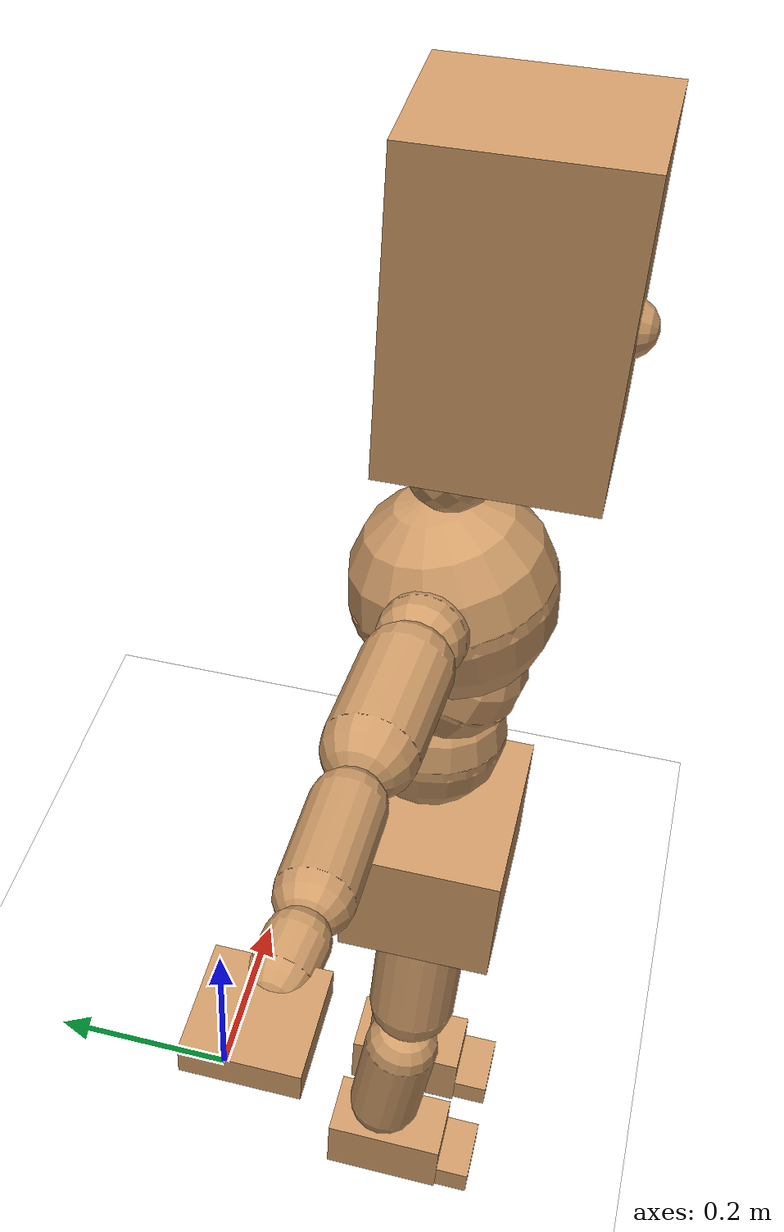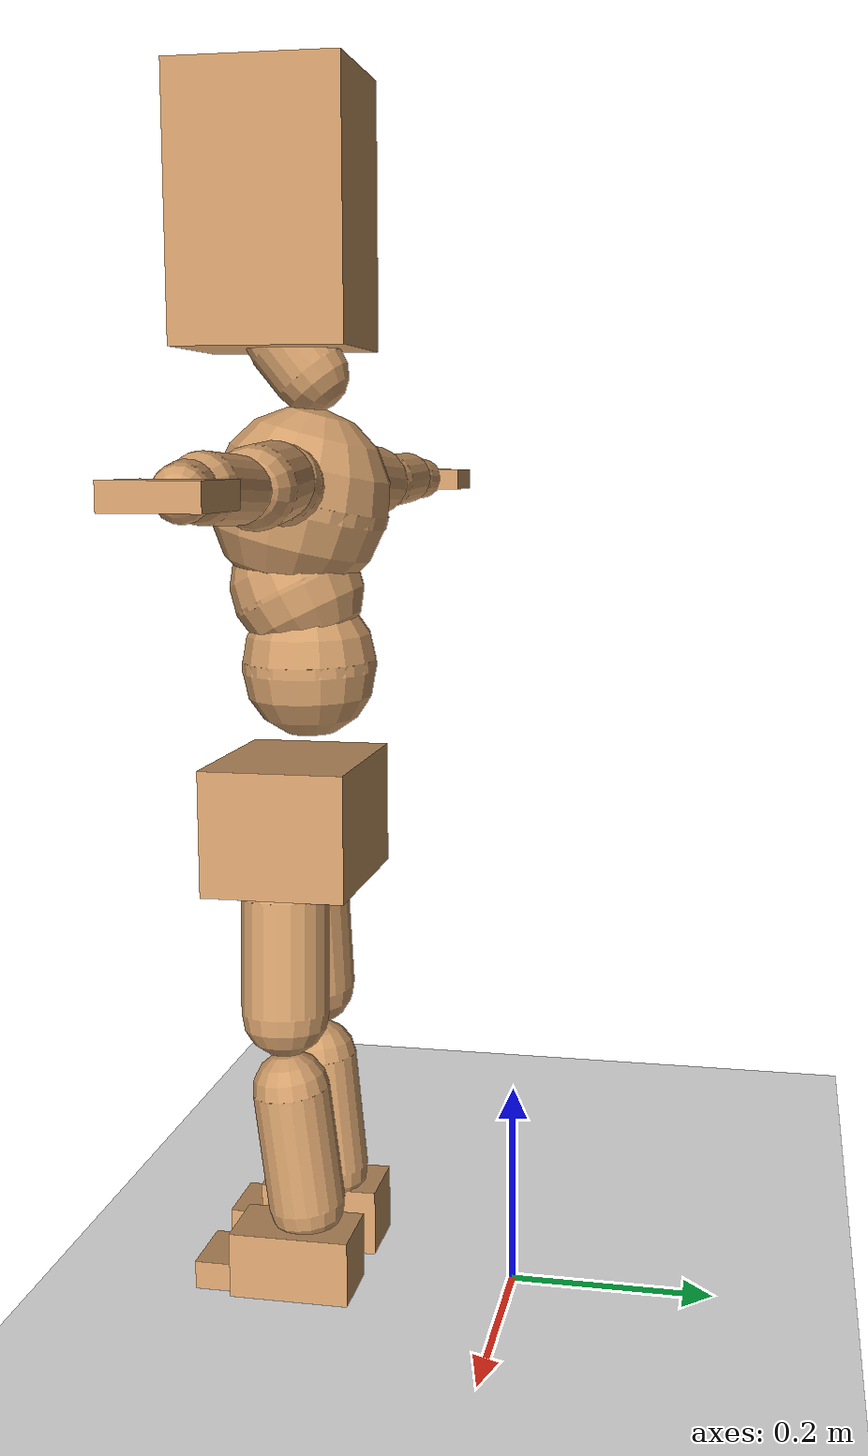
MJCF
<mujoco model="humanoid">
  <option integrator="implicitfast" />

  <visual>
    <global offwidth="1280" offheight="960" />
    <headlight active="1" ambient="0.34 0.34 0.34" diffuse="0.5 0.5 0.5" />
  </visual>

  <default>
    <joint damping="2" stiffness="2" armature="0.01" limited="true" solimplimit="0 .99 .01" />
    <geom condim="1" friction="0.7 0.005 0.0001" solimp=".99 .99 .003" solref="0.015 1" margin="0.001" rgba="0.8 0.6 .4 1" />
    <default class="smplcontact">
      <geom condim="3" friction="1. 0.005 0.0001" solref="0.015 1" solimp="0.98 0.98 0.001" priority="1" />
    </default>
    <default class="stiff_medium">
      <joint stiffness="10" />
    </default>
    <default class="stiff_medium_higher">
      <joint stiffness="50" />
    </default>
    <default class="stiff_high">
      <joint stiffness="100" />
    </default>
  </default>

  <asset>
    <texture type="skybox" builtin="gradient" rgb1="0.99 0.99 0.99" rgb2="0.608 0.828 0.892" width="100" />
    <texture builtin="flat" height="1278" mark="cross" markrgb="1 1 1" name="texgeom" random="0.01" rgb1="0.8 0.6 0.4" rgb2="0.8 0.6 0.4" type="cube" width="127" />
    <texture name="texplane" type="2d" builtin="checker" markrgb="1 1 1" rgb1="0.756 0.772 0.76" rgb2="0.6 0.6 0.6" width="100" height="100" />
    <material name="MatPlane" reflectance="0.5" texture="texplane" texrepeat="1 1" texuniform="true" />
    <material name="geom" texture="texgeom" texuniform="true" />
  </asset>

  <worldbody>
    <light name="tracking_light" pos="0 0 7" dir="0 0 -1" directional="true" cutoff="100" exponent="1" diffuse="1 1 1" specular="0.1 0.1 0.1" mode="trackcom" />
    <camera name="back" pos="0 3 2.4" xyaxes="-1 0 0 0 -1 2" mode="trackcom" />
    <camera name="side" pos="-3 0 2.4" xyaxes="0 -1 0 1 0 2" mode="trackcom" />
    <camera name="front_side" pos="-2.8 -2.8 0.8" xyaxes="0.5 -0.5 0 0.1 0.1 1" mode="trackcom" />
    <geom condim="3" name="floor" pos="0 0 0" rgba="1 1 1 1" size="100 100 .2" type="plane" material="MatPlane" />
    <body name="Pelvis" pos="-0.0018 -0.2233 0.47791" euler="90 0 0">
      <site name="Pelvis" size="0.01" />
      <freejoint name="Pelvis" />
      <geom type="box" pos="-0.0000 -0.0121 -0.0055" size="0.090865 0.06137 0.07055" quat="1.0000 0.0000 0.0000 0.0000" density="3165.830099" name="Pelvis" />
      <body name="L_Hip" pos="0.03475 -0.0457 -0.0034">
        <joint name="L_Hip_x" type="hinge" pos="0 0 0" axis="1 0 0" stiffness="1.3869474509803918" range="-160.0 22.92" class="stiff_medium" damping="1.5093556990585162" armature="0.0007300299420284653"/>
        <joint name="L_Hip_y" type="hinge" pos="0 0 0" axis="0 1 0" stiffness="1.399197254901961" range="-70.0 70.0" class="stiff_medium" damping="1.247402460406935" armature="0.0011120754366676497"/>
        <joint name="L_Hip_z" type="hinge" pos="0 0 0" axis="0 0 1" stiffness="1.3968727450980392" range="-28.65 90.0" class="stiff_medium" damping="1.0094183620765014" armature="0.0007294332524368166"/>
        <geom type="capsule" density="2040.816327" fromto="0.00345 -0.0375 -0.00045 0.0137 -0.1501 -0.0018" size="0.04305" name="L_Hip" />
        <body name="L_Knee" pos="0.01715 -0.1876 -0.00225">
          <joint name="L_Knee_x" type="hinge" pos="0 0 0" axis="1 0 0" range="-5.16 171.89" damping="0.8484730473900159" armature="0.0007813933297969766" stiffness="0.2879097843137255"/>
          <joint name="L_Knee_y" type="hinge" pos="0 0 0" axis="0 1 0" range="-4.58 6.88" damping="1.034354733497624" armature="0.001187316232507046" stiffness="0.2815935019607843"/>
          <joint name="L_Knee_z" type="hinge" pos="0 0 0" axis="0 0 1" range="-6.88 4.58" damping="0.8534040078395666" armature="0.0007782719362704119" stiffness="0.2924340960784314"/>
          <geom type="capsule" density="1234.567901" fromto="-0.00135 -0.0398 -0.00435 -0.00545 -0.1592 -0.0175" size="0.03787" name="L_Knee" />
          <body name="L_Ankle" pos="-0.0068 -0.199 -0.02185">
            <joint name="L_Ankle_x" type="hinge" pos="0 0 0" axis="1 0 0" range="-45.84 45.84" class="stiff_medium" damping="0.838676141646539" armature="0.001139257645881318" stiffness="1.715"/>
            <joint name="L_Ankle_y" type="hinge" pos="0 0 0" axis="0 1 0" range="-74.48 22.92" class="stiff_medium" damping="0.42302891890081107" armature="0.001159400493854156" stiffness="1.715"/>
            <joint name="L_Ankle_z" type="hinge" pos="0 0 0" axis="0 0 1" range="-4.58 4.58" class="stiff_medium" damping="0.8928765816118103" armature="0.0012912675574842753" stiffness="1.715"/>
            <geom type="box" pos="0.01165 -0.01195 0.0121" size="0.03381 0.03248 0.0595" quat="1.0000 0.0000 0.0000 0.0000" density="449.071558" name="L_Ankle" class="smplcontact" />
            <body name="L_Toe" pos="0.0132 -0.0279 0.05965">
              <joint name="L_Toe_x" type="hinge" pos="0 0 0" axis="1 0 0" range="-91.67 22.92" armature="0.0013677293113125212" damping="0.3063106768560948" stiffness="0.343"/>
              <joint name="L_Toe_y" type="hinge" pos="0 0 0" axis="0 1 0" range="-4.58 4.58" armature="0.0014601868835165937" damping="0.31649458164278" stiffness="0.343"/>
              <joint name="L_Toe_z" type="hinge" pos="0 0 0" axis="0 0 1" range="-4.58 4.58" armature="0.0016471311180066772" damping="0.33614460384670475" stiffness="0.343"/>
              <geom type="box" pos="-0.0015 0.00275 0.0124" size="0.03346 0.014 0.03472" quat="1.0000 0.0000 0.0000 0.0000" density="423.206892" name="L_Toe" class="smplcontact" />
            </body>
          </body>
        </body>
      </body>
      <body name="R_Hip" pos="-0.03385 -0.04525 -0.00215">
        <joint name="R_Hip_x" type="hinge" pos="0 0 0" axis="1 0 0" stiffness="1.3869474509803918" range="-160.0 22.92" class="stiff_medium" damping="1.5093556990585162" armature="0.0007300299420284653"/>
        <joint name="R_Hip_y" type="hinge" pos="0 0 0" axis="0 1 0" stiffness="1.399197254901961" range="-70.0 70.0" class="stiff_medium" damping="1.247402460406935" armature="0.0011120754366676497"/>
        <joint name="R_Hip_z" type="hinge" pos="0 0 0" axis="0 0 1" stiffness="1.3968727450980392" range="-90.0 28.65" class="stiff_medium" damping="1.0094183620765014" armature="0.0007294332524368166"/>
        <geom type="capsule" density="2040.816327" fromto="-0.00385 -0.03825 -0.0009 -0.0153 -0.15305 -0.00355" size="0.04242" name="R_Hip" />
        <body name="R_Knee" pos="-0.01915 -0.1913 -0.00445">
          <joint name="R_Knee_x" type="hinge" pos="0 0 0" axis="1 0 0" range="-5.16 171.89" damping="0.8484730473900159" armature="0.0007813933297969766" stiffness="0.2879097843137255"/>
          <joint name="R_Knee_y" type="hinge" pos="0 0 0" axis="0 1 0" range="-6.88 4.58" damping="1.034354733497624" armature="0.001187316232507046" stiffness="0.2815935019607843"/>
          <joint name="R_Knee_z" type="hinge" pos="0 0 0" axis="0 0 1" range="-4.58 6.88" damping="0.8534040078395666" armature="0.0007782719362704119" stiffness="0.2924340960784314"/>
          <geom type="capsule" density="1234.567901" fromto="0.0016 -0.03985 -0.00425 0.0063 -0.15935 -0.0169" size="0.03787" name="R_Knee" />
          <body name="R_Ankle" pos="0.0079 -0.1992 -0.02115">
            <joint name="R_Ankle_x" type="hinge" pos="0 0 0" axis="1 0 0" range="-45.84 45.84" class="stiff_medium" damping="0.838676141646539" armature="0.001139257645881318" stiffness="1.715"/>
            <joint name="R_Ankle_y" type="hinge" pos="0 0 0" axis="0 1 0" range="-22.92 74.48" class="stiff_medium" damping="0.42302891890081107" armature="0.001159400493854156" stiffness="1.715"/>
            <joint name="R_Ankle_z" type="hinge" pos="0 0 0" axis="0 0 1" range="-4.58 4.58" class="stiff_medium" damping="0.8928765816118103" armature="0.0012912675574842753" stiffness="1.715"/>
            <geom type="box" pos="-0.0106 -0.0087 0.0128" size="0.03381 0.03346 0.06055" quat="1.0000 0.0000 0.0000 0.0000" density="434.700981" name="R_Ankle" class="smplcontact" />
            <body name="R_Toe" pos="-0.0127 -0.02405 0.06165">
              <joint name="R_Toe_x" type="hinge" pos="0 0 0" axis="1 0 0" range="-91.67 22.92" armature="0.0013677293113125212" damping="0.3063106768560948" stiffness="0.343"/>
              <joint name="R_Toe_y" type="hinge" pos="0 0 0" axis="0 1 0" range="-4.58 4.58" armature="0.0014601868835165937" damping="0.31649458164278" stiffness="0.343"/>
              <joint name="R_Toe_z" type="hinge" pos="0 0 0" axis="0 0 1" range="-4.58 4.58" armature="0.0016471311180066772" damping="0.33614460384670475" stiffness="0.343"/>
              <geom type="box" pos="0.0021 0.00225 0.01135" size="0.03353 0.01512 0.03451" quat="1.0000 0.0000 0.0000 0.0000" density="407.384095" name="R_Toe" class="smplcontact" />
            </body>
          </body>
        </body>
      </body>
      <body name="Torso" pos="-0.002 0.0872 -0.02136">
        <joint name="Torso_x" type="hinge" pos="0 0 0" axis="1 0 0" range="-25.78 57.3" class="stiff_medium" damping="8.838060799700703" armature="0.005708278873306542" stiffness="6.081717872340425"/>
        <joint name="Torso_y" type="hinge" pos="0 0 0" axis="0 1 0" range="-57.3 57.3" class="stiff_high" damping="5.440479526457223" armature="0.0011837789992735152" stiffness="62.50917083333333"/>
        <joint name="Torso_z" type="hinge" pos="0 0 0" axis="0 0 1" range="-34.38 34.38" class="stiff_high" damping="9.844976309374086" armature="0.004145420120038019" stiffness="58.45219285714286"/>
        <geom type="capsule" density="2040.816327" fromto="0.002 0.04864 0.0004 0.0024 0.05944 0.00048" size="0.065365" name="Torso" />
        <body name="Spine" pos="0.0044 0.10816 0.00088">
          <joint name="Spine_x" type="hinge" pos="0 0 0" axis="1 0 0" stiffness="6.449832083333334" range="-25.78 57.3" class="stiff_medium" damping="10.07899323640548" armature="0.007000086089890321"/>
          <joint name="Spine_y" type="hinge" pos="0 0 0" axis="0 1 0" stiffness="6.878185555555555" range="-57.3 57.3" class="stiff_high" damping="2.2595808022170574" armature="0.0011598501706292952"/>
          <joint name="Spine_z" type="hinge" pos="0 0 0" axis="0 0 1" stiffness="13.729323902439026" range="-34.38 34.38" class="stiff_high" damping="6.101544658112097" armature="0.0037661528426597385"/>
          <geom type="capsule" density="2040.816327" fromto="0.00056 0.01904 0.00912 0.00064 0.02328 0.0112" size="0.064175" name="Spine" />
          <body name="Chest" pos="0.0012 0.04232 0.02032">
            <joint name="Chest_x" type="hinge" pos="0 0 0" axis="1 0 0" stiffness="7.145877837837839" range="-25.78 57.3" class="stiff_medium" damping="11.1379493722509" armature="0.007715647416065464"/>
            <joint name="Chest_y" type="hinge" pos="0 0 0" axis="0 1 0" stiffness="6.055709473684212" range="-57.3 57.3" class="stiff_high" damping="2.0874782975701525" armature="0.0011243432906588736"/>
            <joint name="Chest_z" type="hinge" pos="0 0 0" axis="0 0 1" stiffness="14.58726564102564" range="-34.38 34.38" class="stiff_high" damping="6.062402950327509" armature="0.0034993163859281234"/>
            <geom type="capsule" density="2040.816327" fromto="-0.00072 0.05456 -0.01384 -0.0008 0.06664 -0.01696" size="0.08517" name="Chest" />
            <body name="Neck" pos="-0.00224 0.17112 -0.03432">
              <joint name="Neck_x" type="hinge" pos="0 0 0" axis="1 0 0" range="-28.65 57.3" class="stiff_medium_higher" damping="14.062804726169349" armature="0.014800259525644677" stiffness="66.810476"/>
              <joint name="Neck_y" type="hinge" pos="0 0 0" axis="0 1 0" range="-40.11 40.11" class="stiff_medium_higher" damping="14.199913251234369" armature="0.015018969652174452" stiffness="67.12761960784314"/>
              <joint name="Neck_z" type="hinge" pos="0 0 0" axis="0 0 1" range="-40.11 40.11" class="stiff_medium_higher" damping="14.261681447752082" armature="0.014825793826138998" stiffness="68.59516599999999"/>
              <geom type="capsule" density="1000" fromto="0.0008 0.0104 0.00824 0.00328 0.0416 0.03288" size="0.03706" name="Neck" />
              <body name="Head" pos="0.00546 0.06825 0.053865">
                <joint name="Head_x" type="hinge" pos="0 0 0" axis="1 0 0" range="-28.65 57.3" class="stiff_medium_higher" damping="2.926157504502858" armature="0.01531680036699652" stiffness="69.8775"/>
                <joint name="Head_y" type="hinge" pos="0 0 0" axis="0 1 0" range="-40.11 40.11" class="stiff_medium_higher" damping="2.9943615299673483" armature="0.01603914166246002" stiffness="69.8775"/>
                <joint name="Head_z" type="hinge" pos="0 0 0" axis="0 0 1" range="-40.11 40.11" class="stiff_medium_higher" damping="2.9227390797208646" armature="0.015281034181473948" stiffness="69.8775"/>
                <geom type="box" pos="-0.00441 0.09198 -0.01218" size="0.06666 0.12694 0.0836" quat="1.0000 0.0000 0.0000 0.0000" density="1018.069894" name="Head" />
                <geom type="capsule" name="nose" size="0.022 0.011" pos="0 0.0735 0.0525" quat="1 0 0 0" mass="0" contype="0" conaffinity="0" />
              </body>
            </body>
            <body name="L_Thorax" pos="0.04334 0.066935 -0.018755">
              <joint name="L_Thorax_x" type="hinge" pos="0 0 0" axis="1 0 0" range="-10.89 4.58" class="stiff_medium_higher" damping="2.7530341172494555" armature="0.0011555219023204417" stiffness="8.198889215686275"/>
              <joint name="L_Thorax_y" type="hinge" pos="0 0 0" axis="0 1 0" range="-28.65 17.19" class="stiff_medium_higher" damping="2.446268084628678" armature="0.000917921160852288" stiffness="8.149157843137257"/>
              <joint name="L_Thorax_z" type="hinge" pos="0 0 0" axis="0 0 1" range="-31.51 40.11" class="stiff_medium_higher" damping="2.4460893703980604" armature="0.0009177055122917796" stiffness="8.149881862745099"/>
              <geom type="capsule" density="1000" fromto="0.01001 0.003355 -0.00099 0.04004 0.01342 -0.003905" size="0.03647" name="L_Thorax" />
              <body name="L_Shoulder" pos="0.05005 0.016775 -0.004895">
                <joint name="L_Shoulder_x" type="hinge" pos="0 0 0" axis="1 0 0" range="-97.4 97.4" class="stiff_medium" damping="0.8589836304635406" armature="0.0012450010788859112" stiffness="1.6462566666666667"/>
                <joint name="L_Shoulder_y" type="hinge" pos="0 0 0" axis="0 1 0" range="-108.86 80.21" class="stiff_medium" damping="0.7377183800201375" armature="0.0009249498049155116" stiffness="1.6344082352941176"/>
                <joint name="L_Shoulder_z" type="hinge" pos="0 0 0" axis="0 0 1" range="-97.4 85.94" class="stiff_medium" damping="0.7375788845736357" armature="0.0009246563922965953" stiffness="1.6343086274509804"/>
                <geom type="capsule" density="1000" fromto="0.028545 -0.00143 -0.003025 0.114235 -0.00561 -0.0121" size="0.03619" name="L_Shoulder" />
                <body name="L_Elbow" pos="0.14278 -0.00704 -0.015125">
                  <joint name="L_Elbow_x" type="hinge" pos="0 0 0" axis="1 0 0" range="-17.19 4.58" damping="0.7646819516426342" armature="0.0013954199529746952" stiffness="0.3352329803921569"/>
                  <joint name="L_Elbow_y" type="hinge" pos="0 0 0" axis="0 1 0" range="-180.0 17.19" damping="0.634086667156111" armature="0.0009595274077170352" stiffness="0.3352199411764706"/>
                  <joint name="L_Elbow_z" type="hinge" pos="0 0 0" axis="0 0 1" range="-100.84 4.58" damping="0.6337964027767555" armature="0.0009579869616256556" stiffness="0.3354516470588236"/>
                  <geom type="capsule" density="1000" fromto="0.02739 0.00099 -0.00011 0.10967 0.00396 -0.000495" size="0.02835" name="L_Elbow" />
                  <body name="L_Wrist" pos="0.13706 0.00495 -0.00066">
                    <joint name="L_Wrist_x" type="hinge" pos="0 0 0" axis="1 0 0" range="-180.0 22.92" armature="0.0014560738547014641" damping="0.3249620332881107" stiffness="0.36262007843137256"/>
                    <joint name="L_Wrist_y" type="hinge" pos="0 0 0" axis="0 1 0" range="-17.19 17.19" armature="0.0010902616789041752" damping="0.2804013971786836" stiffness="0.3605783137254902"/>
                    <joint name="L_Wrist_z" type="hinge" pos="0 0 0" axis="0 0 1" range="-22.92 22.92" armature="0.0010694388050535577" damping="0.27796780049868275" stiffness="0.36124599999999996"/>
                    <geom type="capsule" density="1000" fromto="0.00924 -0.00088 -0.00165 0.03696 -0.003575 -0.0066" size="0.02226" name="L_Wrist" class="smplcontact" />
                    <body name="L_Hand" pos="0.0462 -0.00451 -0.008195">
                      <joint name="L_Hand_x" type="hinge" pos="0 0 0" axis="1 0 0" range="-17.19 17.19" armature="0.0016526815130151727" damping="0.3531449376277748" stiffness="0.37730000000000014"/>
                      <joint name="L_Hand_y" type="hinge" pos="0 0 0" axis="0 1 0" range="-51.57 51.57" armature="0.0013418550555748564" damping="0.3182080804971469" stiffness="0.37730000000000014"/>
                      <joint name="L_Hand_z" type="hinge" pos="0 0 0" axis="0 0 1" range="-91.67 91.67" armature="0.0012590000164969628" damping="0.3082274180615035" stiffness="0.37730000000000014"/>
                      <geom type="box" pos="0.027115 0.00055 -0.00319" size="0.04095 0.01106 0.03766" quat="1.0000 0.0000 0.0000 0.0000" density="400.552564" name="L_Hand" class="smplcontact" />
                    </body>
                  </body>
                </body>
              </body>
            </body>
            <body name="R_Thorax" pos="-0.04499 0.06534 -0.02123">
              <joint name="R_Thorax_x" type="hinge" pos="0 0 0" axis="1 0 0" range="-10.89 4.58" class="stiff_medium_higher" damping="2.7530341172494555" armature="0.0011555219023204417" stiffness="8.198889215686275"/>
              <joint name="R_Thorax_y" type="hinge" pos="0 0 0" axis="0 1 0" range="-17.19 28.65" class="stiff_medium_higher" damping="2.446268084628678" armature="0.000917921160852288" stiffness="8.149157843137257"/>
              <joint name="R_Thorax_z" type="hinge" pos="0 0 0" axis="0 0 1" range="-40.11 31.51" class="stiff_medium_higher" damping="2.4460893703980604" armature="0.0009177055122917796" stiffness="8.149881862745099"/>
              <geom type="capsule" density="1000" fromto="-0.01056 0.003575 -0.00099 -0.04224 0.0143 -0.004015" size="0.03577" name="R_Thorax" />
              <body name="R_Shoulder" pos="-0.0528 0.01793 -0.005005">
                <joint name="R_Shoulder_x" type="hinge" pos="0 0 0" axis="1 0 0" range="-97.4 97.4" class="stiff_medium" damping="0.8589836304635406" armature="0.0012450010788859112" stiffness="1.6462566666666667"/>
                <joint name="R_Shoulder_y" type="hinge" pos="0 0 0" axis="0 1 0" range="-80.21 108.86" class="stiff_medium" damping="0.7377183800201375" armature="0.0009249498049155116" stiffness="1.6344082352941176"/>
                <joint name="R_Shoulder_z" type="hinge" pos="0 0 0" axis="0 0 1" range="-85.94 97.4" class="stiff_medium" damping="0.7375788845736357" armature="0.0009246563922965953" stiffness="1.6343086274509804"/>
                <geom type="capsule" density="1000" fromto="-0.027885 -0.001485 -0.002365 -0.11165 -0.005885 -0.009405" size="0.03717" name="R_Shoulder" />
                <body name="R_Elbow" pos="-0.139535 -0.007315 -0.01177">
                  <joint name="R_Elbow_x" type="hinge" pos="0 0 0" axis="1 0 0" range="-17.19 4.58" damping="0.7646819516426342" armature="0.0013954199529746952" stiffness="0.3352329803921569"/>
                  <joint name="R_Elbow_y" type="hinge" pos="0 0 0" axis="0 1 0" range="-17.19 180.0" damping="0.634086667156111" armature="0.0009595274077170352" stiffness="0.3352199411764706"/>
                  <joint name="R_Elbow_z" type="hinge" pos="0 0 0" axis="0 0 1" range="-4.58 100.84" damping="0.6337964027767555" armature="0.0009579869616256556" stiffness="0.3354516470588236"/>
                  <geom type="capsule" density="1000" fromto="-0.028105 0.00088 -0.000605 -0.11231 0.00341 -0.00242" size="0.02856" name="R_Elbow" />
                  <body name="R_Wrist" pos="-0.140415 0.00429 -0.00308">
                    <joint name="R_Wrist_x" type="hinge" pos="0 0 0" axis="1 0 0" range="-180.0 22.92" armature="0.0014560738547014641" damping="0.3249620332881107" stiffness="0.36262007843137256"/>
                    <joint name="R_Wrist_y" type="hinge" pos="0 0 0" axis="0 1 0" range="-17.19 17.19" armature="0.0010902616789041752" damping="0.2804013971786836" stiffness="0.3605783137254902"/>
                    <joint name="R_Wrist_z" type="hinge" pos="0 0 0" axis="0 0 1" range="-22.92 22.92" armature="0.0010694388050535577" damping="0.27796780049868275" stiffness="0.36124599999999996"/>
                    <geom type="capsule" density="1000" fromto="-0.009295 -0.00066 -0.001155 -0.037235 -0.002695 -0.004565" size="0.02282" name="R_Wrist" class="smplcontact" />
                    <body name="R_Hand" pos="-0.04653 -0.003355 -0.005665">
                      <joint name="R_Hand_x" type="hinge" pos="0 0 0" axis="1 0 0" range="-17.19 17.19" armature="0.0016526815130151727" damping="0.3531449376277748" stiffness="0.37730000000000014"/>
                      <joint name="R_Hand_y" type="hinge" pos="0 0 0" axis="0 1 0" range="-51.57 51.57" armature="0.0013418550555748564" damping="0.3182080804971469" stiffness="0.37730000000000014"/>
                      <joint name="R_Hand_z" type="hinge" pos="0 0 0" axis="0 0 1" range="-91.67 91.67" armature="0.0012590000164969628" damping="0.3082274180615035" stiffness="0.37730000000000014"/>
                      <geom type="box" pos="-0.02541 -0.000495 -0.004345" size="0.03983 0.01148 0.03822" quat="1.0000 0.0000 0.0000 0.0000" density="403.679611" name="R_Hand" class="smplcontact" />
                    </body>
                  </body>
                </body>
              </body>
            </body>
          </body>
        </body>
      </body>
    </body>
  </worldbody>
  <actuator>
    <general name="L_Hip_x" joint="L_Hip_x" biastype="affine" gainprm="39.851169998981405" biasprm="-29.864412767660017 -24.965054117647057 -0.2012474265411355" ctrllimited="true" ctrlrange="-1 1" forcerange="-49.930108235294114 49.930108235294114" />
    <general name="L_Hip_y" joint="L_Hip_y" biastype="affine" gainprm="30.76995471846104" biasprm="0.0 -25.185550588235298 -0.249480492081387" ctrllimited="true" ctrlrange="-1 1" forcerange="-50.371101176470596 50.371101176470596" />
    <general name="L_Hip_z" joint="L_Hip_z" biastype="affine" gainprm="26.034213576103863" biasprm="13.46143280989441 -25.143709411764707 -0.20188367241530028" ctrllimited="true" ctrlrange="-1 1" forcerange="-50.287418823529414 50.287418823529414" />
    <general name="L_Knee_x" joint="L_Knee_x" biastype="affine" gainprm="40.035221591666726" biasprm="37.70162381236144 -25.911880588235295 -0.21211826184750399" ctrllimited="true" ctrlrange="-1 1" forcerange="-51.82376117647059 51.82376117647059" />
    <general name="L_Knee_y" joint="L_Knee_y" biastype="affine" gainprm="2.5345282007729546" biasprm="0.5086749443087082 -25.34341517647059 -0.258588683374406" ctrllimited="true" ctrlrange="-1 1" forcerange="-50.68683035294118 50.68683035294118" />
    <general name="L_Knee_z" joint="L_Knee_z" biastype="affine" gainprm="2.6321007346311274" biasprm="-0.5282575645420238 -26.319068647058828 -0.21335100195989165" ctrllimited="true" ctrlrange="-1 1" forcerange="-52.638137294117655 52.638137294117655" />
    <general name="L_Ankle_x" joint="L_Ankle_x" biastype="affine" gainprm="12.34890957087769" biasprm="0.0 -15.435 -0.2795587138821797" ctrllimited="true" ctrlrange="-1 1" forcerange="-30.87 30.87" />
    <general name="L_Ankle_y" joint="L_Ankle_y" biastype="affine" gainprm="13.119369461207318" biasprm="-6.944914675768474 -15.435 -0.2820192792672074" ctrllimited="true" ctrlrange="-1 1" forcerange="-30.87 30.87" />
    <general name="L_Ankle_z" joint="L_Ankle_z" biastype="affine" gainprm="1.2338133908075875" biasprm="0.0 -15.435 -0.29762552720393676" ctrllimited="true" ctrlrange="-1 1" forcerange="-30.87 30.87" />
    <general name="L_Toe_x" joint="L_Toe_x" biastype="affine" gainprm="12.347832004597505" biasprm="-7.40826817624643 -12.348 -0.12252427074243794" ctrllimited="true" ctrlrange="-1 1" forcerange="-24.696 24.696" />
    <general name="L_Toe_y" joint="L_Toe_y" biastype="affine" gainprm="0.98705071264607" biasprm="0.0 -12.348 -0.126597832657112" ctrllimited="true" ctrlrange="-1 1" forcerange="-24.696 24.696" />
    <general name="L_Toe_z" joint="L_Toe_z" biastype="affine" gainprm="0.98705071264607" biasprm="0.0 -12.348 -0.1344578415386819" ctrllimited="true" ctrlrange="-1 1" forcerange="-24.696 24.696" />
    <general name="R_Hip_x" joint="R_Hip_x" biastype="affine" gainprm="39.851169998981405" biasprm="-29.864412767660017 -24.965054117647057 -0.2012474265411355" ctrllimited="true" ctrlrange="-1 1" forcerange="-49.930108235294114 49.930108235294114" />
    <general name="R_Hip_y" joint="R_Hip_y" biastype="affine" gainprm="30.76995471846104" biasprm="0.0 -25.185550588235298 -0.249480492081387" ctrllimited="true" ctrlrange="-1 1" forcerange="-50.371101176470596 50.371101176470596" />
    <general name="R_Hip_z" joint="R_Hip_z" biastype="affine" gainprm="26.034213576103863" biasprm="-13.46143280989441 -25.143709411764707 -0.20188367241530028" ctrllimited="true" ctrlrange="-1 1" forcerange="-50.287418823529414 50.287418823529414" />
    <general name="R_Knee_x" joint="R_Knee_x" biastype="affine" gainprm="40.035221591666726" biasprm="37.70162381236144 -25.911880588235295 -0.21211826184750399" ctrllimited="true" ctrlrange="-1 1" forcerange="-51.82376117647059 51.82376117647059" />
    <general name="R_Knee_y" joint="R_Knee_y" biastype="affine" gainprm="2.5345282007729546" biasprm="-0.5086749443087082 -25.34341517647059 -0.258588683374406" ctrllimited="true" ctrlrange="-1 1" forcerange="-50.68683035294118 50.68683035294118" />
    <general name="R_Knee_z" joint="R_Knee_z" biastype="affine" gainprm="2.6321007346311274" biasprm="0.5282575645420238 -26.319068647058828 -0.21335100195989165" ctrllimited="true" ctrlrange="-1 1" forcerange="-52.638137294117655 52.638137294117655" />
    <general name="R_Ankle_x" joint="R_Ankle_x" biastype="affine" gainprm="12.34890957087769" biasprm="0.0 -15.435 -0.2795587138821797" ctrllimited="true" ctrlrange="-1 1" forcerange="-30.87 30.87" />
    <general name="R_Ankle_y" joint="R_Ankle_y" biastype="affine" gainprm="13.119369461207318" biasprm="6.944914675768474 -15.435 -0.2820192792672074" ctrllimited="true" ctrlrange="-1 1" forcerange="-30.87 30.87" />
    <general name="R_Ankle_z" joint="R_Ankle_z" biastype="affine" gainprm="1.2338133908075875" biasprm="0.0 -15.435 -0.29762552720393676" ctrllimited="true" ctrlrange="-1 1" forcerange="-30.87 30.87" />
    <general name="R_Toe_x" joint="R_Toe_x" biastype="affine" gainprm="12.347832004597505" biasprm="-7.40826817624643 -12.348 -0.12252427074243794" ctrllimited="true" ctrlrange="-1 1" forcerange="-24.696 24.696" />
    <general name="R_Toe_y" joint="R_Toe_y" biastype="affine" gainprm="0.98705071264607" biasprm="0.0 -12.348 -0.126597832657112" ctrllimited="true" ctrlrange="-1 1" forcerange="-24.696 24.696" />
    <general name="R_Toe_z" joint="R_Toe_z" biastype="affine" gainprm="0.98705071264607" biasprm="0.0 -12.348 -0.1344578415386819" ctrllimited="true" ctrlrange="-1 1" forcerange="-24.696 24.696" />
    <general name="Torso_x" joint="Torso_x" biastype="affine" gainprm="105.82331720653343" biasprm="40.14866343704782 -145.96122893617022 -2.356816213253521" ctrllimited="true" ctrlrange="-1 1" forcerange="-218.9418434042553 218.9418434042553" />
    <general name="Torso_y" joint="Torso_y" biastype="affine" gainprm="150.03306083019984" biasprm="0.0 -150.02201 -1.0880959052914447" ctrllimited="true" ctrlrange="-1 1" forcerange="-225.03301499999998 225.03301499999998" />
    <general name="Torso_z" joint="Torso_z" biastype="affine" gainprm="84.17735787899241" biasprm="0.0 -140.28526285714287 -1.9689952618748174" ctrllimited="true" ctrlrange="-1 1" forcerange="-210.4278942857143 210.4278942857143" />
    <general name="Spine_x" joint="Spine_x" biastype="affine" gainprm="112.22859080452496" biasprm="42.57878168221745 -154.79597 -2.6877315297081283" ctrllimited="true" ctrlrange="-1 1" forcerange="-232.193955 232.193955" />
    <general name="Spine_y" joint="Spine_y" biastype="affine" gainprm="165.08861309479622" biasprm="0.0 -165.07645333333332 -1.1297904011085287" ctrllimited="true" ctrlrange="-1 1" forcerange="-247.61467999999996 247.61467999999996" />
    <general name="Spine_z" joint="Spine_z" biastype="affine" gainprm="98.8584136096263" biasprm="0.0 -164.7518868292683 -2.033848219370699" ctrllimited="true" ctrlrange="-1 1" forcerange="-247.12783024390245 247.12783024390245" />
    <general name="Chest_x" joint="Chest_x" biastype="affine" gainprm="124.33995016306841" biasprm="47.17375095257481 -171.50106810810811 -2.97011983260024" ctrllimited="true" ctrlrange="-1 1" forcerange="-257.25160216216216 257.25160216216216" />
    <general name="Chest_y" joint="Chest_y" biastype="affine" gainprm="145.3477330962753" biasprm="0.0 -145.3370273684211 -1.0437391487850762" ctrllimited="true" ctrlrange="-1 1" forcerange="-218.00554105263163 218.00554105263163" />
    <general name="Chest_z" joint="Chest_z" biastype="affine" gainprm="105.03604914717013" biasprm="0.0 -175.0471876923077 -2.020800983442503" ctrllimited="true" ctrlrange="-1 1" forcerange="-262.5707815384615 262.5707815384615" />
    <general name="Neck_x" joint="Neck_x" biastype="affine" gainprm="36.08031457046475" biasprm="12.02677152348825 -48.10354272 -1.125024378093548" ctrllimited="true" ctrlrange="-1 1" forcerange="-96.20708544 96.20708544" />
    <general name="Neck_y" joint="Neck_y" biastype="affine" gainprm="33.83481241818493" biasprm="0.0 -48.331886117647066 -1.1359930600987496" ctrllimited="true" ctrlrange="-1 1" forcerange="-96.66377223529413 96.66377223529413" />
    <general name="Neck_z" joint="Neck_z" biastype="affine" gainprm="34.574510282993614" biasprm="0.0 -49.388519519999996 -1.1409345158201665" ctrllimited="true" ctrlrange="-1 1" forcerange="-98.77703903999999 98.77703903999999" />
    <general name="Head_x" joint="Head_x" biastype="affine" gainprm="25.157753018629897" biasprm="8.385917672876632 -33.541199999999996 -1.1704630018011433" ctrllimited="true" ctrlrange="-1 1" forcerange="-67.08239999999999 67.08239999999999" />
    <general name="Head_y" joint="Head_y" biastype="affine" gainprm="23.48056948405457" biasprm="0.0 -33.541199999999996 -1.1977446119869393" ctrllimited="true" ctrlrange="-1 1" forcerange="-67.08239999999999 67.08239999999999" />
    <general name="Head_z" joint="Head_z" biastype="affine" gainprm="23.48056948405457" biasprm="0.0 -33.541199999999996 -1.1690956318883459" ctrllimited="true" ctrlrange="-1 1" forcerange="-67.08239999999999 67.08239999999999" />
    <general name="L_Thorax_x" joint="L_Thorax_x" biastype="affine" gainprm="2.6564640658261274" biasprm="-1.0835351167008966 -19.67733411764706 -0.22024272937995645" ctrllimited="true" ctrlrange="-1 1" forcerange="-39.35466823529412 39.35466823529412" />
    <general name="L_Thorax_y" joint="L_Thorax_y" biastype="affine" gainprm="7.823767796595578" biasprm="-1.9559419491488945 -19.557978823529414 -0.19570144677029427" ctrllimited="true" ctrlrange="-1 1" forcerange="-39.11595764705883 39.11595764705883" />
    <general name="L_Thorax_z" joint="L_Thorax_z" biastype="affine" gainprm="12.224869837957876" biasprm="1.4679402486238162 -19.55971647058824 -0.19568714963184486" ctrllimited="true" ctrlrange="-1 1" forcerange="-39.11943294117648 39.11943294117648" />
    <general name="L_Shoulder_x" joint="L_Shoulder_x" biastype="affine" gainprm="13.433064762200582" biasprm="0.0 -7.902032 -0.22906230145694417" ctrllimited="true" ctrlrange="-1 1" forcerange="-15.804064 15.804064" />
    <general name="L_Shoulder_y" joint="L_Shoulder_y" biastype="affine" gainprm="12.944097495760612" biasprm="-1.9614343536972632 -7.845159529411764 -0.19672490133870332" ctrllimited="true" ctrlrange="-1 1" forcerange="-15.690319058823528 15.690319058823528" />
    <general name="L_Shoulder_z" joint="L_Shoulder_z" biastype="affine" gainprm="12.55104566388304" biasprm="-0.7845259261923201 -7.844681411764706 -0.19668770255296952" ctrllimited="true" ctrlrange="-1 1" forcerange="-15.689362823529413 15.689362823529413" />
    <general name="L_Elbow_x" joint="L_Elbow_x" biastype="affine" gainprm="2.2927412247960812" biasprm="-1.3280416557041157 -12.068387294117647 -0.12234911226282148" ctrllimited="true" ctrlrange="-1 1" forcerange="-24.136774588235294 24.136774588235294" />
    <general name="L_Elbow_y" joint="L_Elbow_y" biastype="affine" gainprm="20.76656210496121" biasprm="-17.145920058363682 -12.06791788235294 -0.10145386674497776" ctrllimited="true" ctrlrange="-1 1" forcerange="-24.13583576470588 24.13583576470588" />
    <general name="L_Elbow_z" joint="L_Elbow_z" biastype="affine" gainprm="11.109712317424712" biasprm="-10.144383491513025 -12.076259294117648 -0.10140742444428089" ctrllimited="true" ctrlrange="-1 1" forcerange="-24.152518588235296 24.152518588235296" />
    <general name="L_Wrist_x" joint="L_Wrist_x" biastype="affine" gainprm="3.852789870770131" biasprm="-2.9824375758947967 -2.175720470588235 -0.12998481331524428" ctrllimited="true" ctrlrange="-1 1" forcerange="-4.35144094117647 4.35144094117647" />
    <general name="L_Wrist_y" joint="L_Wrist_y" biastype="affine" gainprm="0.649088773967295" biasprm="0.0 -2.163469882352941 -0.11216055887147346" ctrllimited="true" ctrlrange="-1 1" forcerange="-4.326939764705882 4.326939764705882" />
    <general name="L_Wrist_z" joint="L_Wrist_z" biastype="affine" gainprm="0.8670542637203656" biasprm="0.0 -2.1674759999999997 -0.1111871201994731" ctrllimited="true" ctrlrange="-1 1" forcerange="-4.3349519999999995 4.3349519999999995" />
    <general name="L_Hand_x" joint="L_Hand_x" biastype="affine" gainprm="0.6791900263982732" biasprm="0.0 -2.2638000000000007 -0.14125797505110993" ctrllimited="true" ctrlrange="-1 1" forcerange="-4.527600000000001 4.527600000000001" />
    <general name="L_Hand_y" joint="L_Hand_y" biastype="affine" gainprm="2.037570079194819" biasprm="0.0 -2.2638000000000007 -0.12728323219885876" ctrllimited="true" ctrlrange="-1 1" forcerange="-4.527600000000001 4.527600000000001" />
    <general name="L_Hand_z" joint="L_Hand_z" biastype="affine" gainprm="3.6219516998213894" biasprm="0.0 -2.2638000000000007 -0.12329096722460141" ctrllimited="true" ctrlrange="-1 1" forcerange="-4.527600000000001 4.527600000000001" />
    <general name="R_Thorax_x" joint="R_Thorax_x" biastype="affine" gainprm="2.6564640658261274" biasprm="-1.0835351167008966 -19.67733411764706 -0.22024272937995645" ctrllimited="true" ctrlrange="-1 1" forcerange="-39.35466823529412 39.35466823529412" />
    <general name="R_Thorax_y" joint="R_Thorax_y" biastype="affine" gainprm="7.823767796595578" biasprm="1.9559419491488934 -19.557978823529414 -0.19570144677029427" ctrllimited="true" ctrlrange="-1 1" forcerange="-39.11595764705883 39.11595764705883" />
    <general name="R_Thorax_z" joint="R_Thorax_z" biastype="affine" gainprm="12.224869837957876" biasprm="-1.4679402486238162 -19.55971647058824 -0.19568714963184486" ctrllimited="true" ctrlrange="-1 1" forcerange="-39.11943294117648 39.11943294117648" />
    <general name="R_Shoulder_x" joint="R_Shoulder_x" biastype="affine" gainprm="13.433064762200582" biasprm="0.0 -7.902032 -0.22906230145694417" ctrllimited="true" ctrlrange="-1 1" forcerange="-15.804064 15.804064" />
    <general name="R_Shoulder_y" joint="R_Shoulder_y" biastype="affine" gainprm="12.944097495760612" biasprm="1.9614343536972632 -7.845159529411764 -0.19672490133870332" ctrllimited="true" ctrlrange="-1 1" forcerange="-15.690319058823528 15.690319058823528" />
    <general name="R_Shoulder_z" joint="R_Shoulder_z" biastype="affine" gainprm="12.55104566388304" biasprm="0.7845259261923183 -7.844681411764706 -0.19668770255296952" ctrllimited="true" ctrlrange="-1 1" forcerange="-15.689362823529413 15.689362823529413" />
    <general name="R_Elbow_x" joint="R_Elbow_x" biastype="affine" gainprm="2.2927412247960812" biasprm="-1.3280416557041157 -12.068387294117647 -0.12234911226282148" ctrllimited="true" ctrlrange="-1 1" forcerange="-24.136774588235294 24.136774588235294" />
    <general name="R_Elbow_y" joint="R_Elbow_y" biastype="affine" gainprm="20.76656210496121" biasprm="17.145920058363682 -12.06791788235294 -0.10145386674497776" ctrllimited="true" ctrlrange="-1 1" forcerange="-24.13583576470588 24.13583576470588" />
    <general name="R_Elbow_z" joint="R_Elbow_z" biastype="affine" gainprm="11.109712317424712" biasprm="10.144383491513024 -12.076259294117648 -0.10140742444428089" ctrllimited="true" ctrlrange="-1 1" forcerange="-24.152518588235296 24.152518588235296" />
    <general name="R_Wrist_x" joint="R_Wrist_x" biastype="affine" gainprm="3.852789870770131" biasprm="-2.9824375758947967 -2.175720470588235 -0.12998481331524428" ctrllimited="true" ctrlrange="-1 1" forcerange="-4.35144094117647 4.35144094117647" />
    <general name="R_Wrist_y" joint="R_Wrist_y" biastype="affine" gainprm="0.649088773967295" biasprm="0.0 -2.163469882352941 -0.11216055887147346" ctrllimited="true" ctrlrange="-1 1" forcerange="-4.326939764705882 4.326939764705882" />
    <general name="R_Wrist_z" joint="R_Wrist_z" biastype="affine" gainprm="0.8670542637203656" biasprm="0.0 -2.1674759999999997 -0.1111871201994731" ctrllimited="true" ctrlrange="-1 1" forcerange="-4.3349519999999995 4.3349519999999995" />
    <general name="R_Hand_x" joint="R_Hand_x" biastype="affine" gainprm="0.6791900263982732" biasprm="0.0 -2.2638000000000007 -0.14125797505110993" ctrllimited="true" ctrlrange="-1 1" forcerange="-4.527600000000001 4.527600000000001" />
    <general name="R_Hand_y" joint="R_Hand_y" biastype="affine" gainprm="2.037570079194819" biasprm="0.0 -2.2638000000000007 -0.12728323219885876" ctrllimited="true" ctrlrange="-1 1" forcerange="-4.527600000000001 4.527600000000001" />
    <general name="R_Hand_z" joint="R_Hand_z" biastype="affine" gainprm="3.6219516998213894" biasprm="0.0 -2.2638000000000007 -0.12329096722460141" ctrllimited="true" ctrlrange="-1 1" forcerange="-4.527600000000001 4.527600000000001" />
  </actuator>
  <contact>
    <exclude body1="Torso" body2="Chest" />
    <exclude body1="Head" body2="Chest" />
    <exclude body1="R_Knee" body2="R_Toe" />
    <exclude body1="R_Knee" body2="L_Ankle" />
    <exclude body1="R_Knee" body2="L_Toe" />
    <exclude body1="L_Knee" body2="L_Toe" />
    <exclude body1="L_Knee" body2="R_Ankle" />
    <exclude body1="L_Knee" body2="R_Toe" />
    <exclude body1="L_Shoulder" body2="Chest" />
    <exclude body1="R_Shoulder" body2="Chest" />
  </contact>
  <sensor>
    <framelinvel name="sensor_Pelvis_framelinvel" objtype="xbody" objname="Pelvis" />
    <framelinvel name="sensor_L_Hip_framelinvel" objtype="xbody" objname="L_Hip" />
    <framelinvel name="sensor_L_Knee_framelinvel" objtype="xbody" objname="L_Knee" />
    <framelinvel name="sensor_L_Ankle_framelinvel" objtype="xbody" objname="L_Ankle" />
    <framelinvel name="sensor_L_Toe_framelinvel" objtype="xbody" objname="L_Toe" />
    <framelinvel name="sensor_R_Hip_framelinvel" objtype="xbody" objname="R_Hip" />
    <framelinvel name="sensor_R_Knee_framelinvel" objtype="xbody" objname="R_Knee" />
    <framelinvel name="sensor_R_Ankle_framelinvel" objtype="xbody" objname="R_Ankle" />
    <framelinvel name="sensor_R_Toe_framelinvel" objtype="xbody" objname="R_Toe" />
    <framelinvel name="sensor_Torso_framelinvel" objtype="xbody" objname="Torso" />
    <framelinvel name="sensor_Spine_framelinvel" objtype="xbody" objname="Spine" />
    <framelinvel name="sensor_Chest_framelinvel" objtype="xbody" objname="Chest" />
    <framelinvel name="sensor_Neck_framelinvel" objtype="xbody" objname="Neck" />
    <framelinvel name="sensor_Head_framelinvel" objtype="xbody" objname="Head" />
    <framelinvel name="sensor_L_Thorax_framelinvel" objtype="xbody" objname="L_Thorax" />
    <framelinvel name="sensor_L_Shoulder_framelinvel" objtype="xbody" objname="L_Shoulder" />
    <framelinvel name="sensor_L_Elbow_framelinvel" objtype="xbody" objname="L_Elbow" />
    <framelinvel name="sensor_L_Wrist_framelinvel" objtype="xbody" objname="L_Wrist" />
    <framelinvel name="sensor_L_Hand_framelinvel" objtype="xbody" objname="L_Hand" />
    <framelinvel name="sensor_R_Thorax_framelinvel" objtype="xbody" objname="R_Thorax" />
    <framelinvel name="sensor_R_Shoulder_framelinvel" objtype="xbody" objname="R_Shoulder" />
    <framelinvel name="sensor_R_Elbow_framelinvel" objtype="xbody" objname="R_Elbow" />
    <framelinvel name="sensor_R_Wrist_framelinvel" objtype="xbody" objname="R_Wrist" />
    <framelinvel name="sensor_R_Hand_framelinvel" objtype="xbody" objname="R_Hand" />
    <frameangvel name="sensor_Pelvis_frameangvel" objtype="xbody" objname="Pelvis" />
    <frameangvel name="sensor_L_Hip_frameangvel" objtype="xbody" objname="L_Hip" />
    <frameangvel name="sensor_L_Knee_frameangvel" objtype="xbody" objname="L_Knee" />
    <frameangvel name="sensor_L_Ankle_frameangvel" objtype="xbody" objname="L_Ankle" />
    <frameangvel name="sensor_L_Toe_frameangvel" objtype="xbody" objname="L_Toe" />
    <frameangvel name="sensor_R_Hip_frameangvel" objtype="xbody" objname="R_Hip" />
    <frameangvel name="sensor_R_Knee_frameangvel" objtype="xbody" objname="R_Knee" />
    <frameangvel name="sensor_R_Ankle_frameangvel" objtype="xbody" objname="R_Ankle" />
    <frameangvel name="sensor_R_Toe_frameangvel" objtype="xbody" objname="R_Toe" />
    <frameangvel name="sensor_Torso_frameangvel" objtype="xbody" objname="Torso" />
    <frameangvel name="sensor_Spine_frameangvel" objtype="xbody" objname="Spine" />
    <frameangvel name="sensor_Chest_frameangvel" objtype="xbody" objname="Chest" />
    <frameangvel name="sensor_Neck_frameangvel" objtype="xbody" objname="Neck" />
    <frameangvel name="sensor_Head_frameangvel" objtype="xbody" objname="Head" />
    <frameangvel name="sensor_L_Thorax_frameangvel" objtype="xbody" objname="L_Thorax" />
    <frameangvel name="sensor_L_Shoulder_frameangvel" objtype="xbody" objname="L_Shoulder" />
    <frameangvel name="sensor_L_Elbow_frameangvel" objtype="xbody" objname="L_Elbow" />
    <frameangvel name="sensor_L_Wrist_frameangvel" objtype="xbody" objname="L_Wrist" />
    <frameangvel name="sensor_L_Hand_frameangvel" objtype="xbody" objname="L_Hand" />
    <frameangvel name="sensor_R_Thorax_frameangvel" objtype="xbody" objname="R_Thorax" />
    <frameangvel name="sensor_R_Shoulder_frameangvel" objtype="xbody" objname="R_Shoulder" />
    <frameangvel name="sensor_R_Elbow_frameangvel" objtype="xbody" objname="R_Elbow" />
    <frameangvel name="sensor_R_Wrist_frameangvel" objtype="xbody" objname="R_Wrist" />
    <frameangvel name="sensor_R_Hand_frameangvel" objtype="xbody" objname="R_Hand" />
    <subtreelinvel name="Chest_subtreelinvel" body="Chest" />
    <gyro name="Pelvis_gyro" site="Pelvis" />
  </sensor>
</mujoco>
